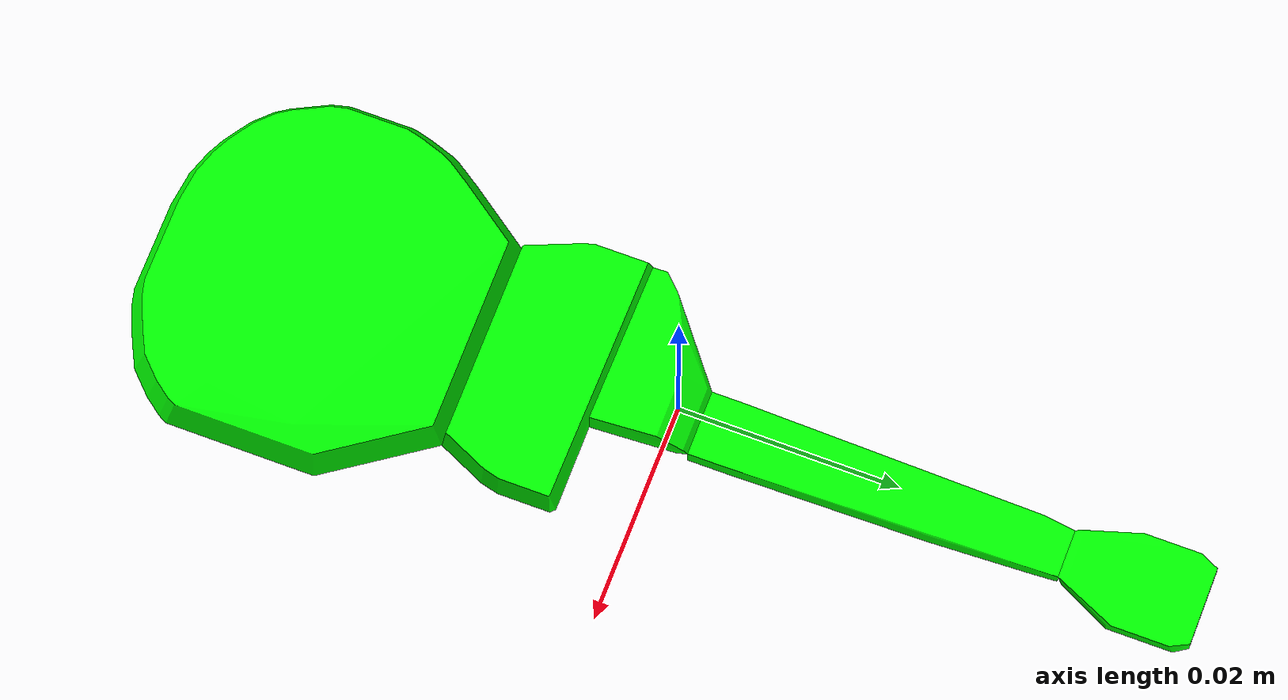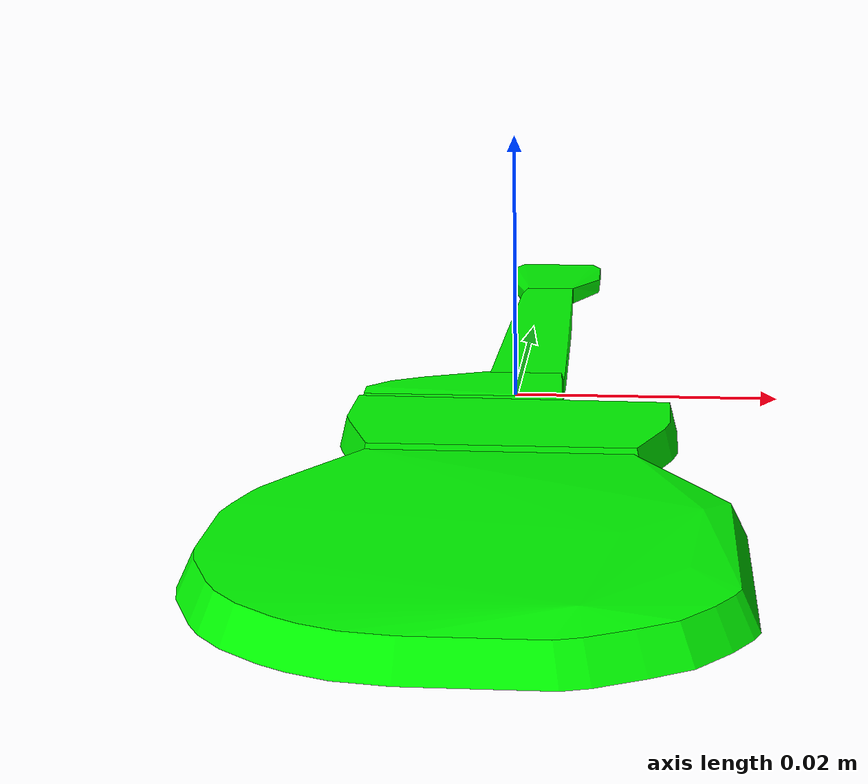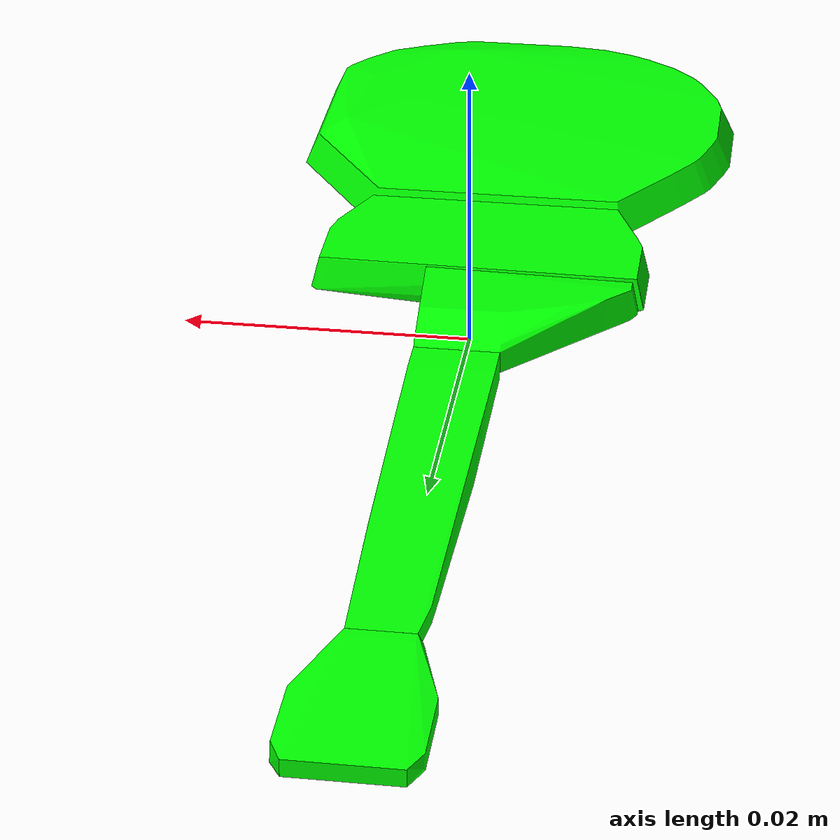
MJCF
<mujoco model="shapenet19-0">
  <asset>
    <mesh file="meshes/shapenet19-0/shapenet19-0_0.stl" name="shapenet19-0_0" scale="0.1 0.1 0.1"/>
    <mesh file="meshes/shapenet19-0/shapenet19-0_1.stl" name="shapenet19-0_1" scale="0.1 0.1 0.1"/>
    <mesh file="meshes/shapenet19-0/shapenet19-0_2.stl" name="shapenet19-0_2" scale="0.1 0.1 0.1"/>
    <mesh file="meshes/shapenet19-0/shapenet19-0_3.stl" name="shapenet19-0_3" scale="0.1 0.1 0.1"/>
    <mesh file="meshes/shapenet19-0/shapenet19-0_4.stl" name="shapenet19-0_4" scale="0.1 0.1 0.1"/>
  </asset>
  <worldbody>
    <body>
      <body name="collision">
        <geom pos="0 0 0" mesh="shapenet19-0_0" type="mesh" solimp="0.998 0.998 0.001" solref="0.001 1" density="100" friction="0.95 0.3 0.1" rgba="0 1 0 1" group="1" condim="4"/>
        <geom pos="0 0 0" mesh="shapenet19-0_1" type="mesh" solimp="0.998 0.998 0.001" solref="0.001 1" density="100" friction="0.95 0.3 0.1" rgba="0 1 0 1" group="1" condim="4"/>
        <geom pos="0 0 0" mesh="shapenet19-0_2" type="mesh" solimp="0.998 0.998 0.001" solref="0.001 1" density="100" friction="0.95 0.3 0.1" rgba="0 1 0 1" group="1" condim="4"/>
        <geom pos="0 0 0" mesh="shapenet19-0_3" type="mesh" solimp="0.998 0.998 0.001" solref="0.001 1" density="100" friction="0.95 0.3 0.1" rgba="0 1 0 1" group="1" condim="4"/>
        <geom pos="0 0 0" mesh="shapenet19-0_4" type="mesh" solimp="0.998 0.998 0.001" solref="0.001 1" density="100" friction="0.95 0.3 0.1" rgba="0 1 0 1" group="1" condim="4"/>
      </body>
      <body name="visual">
        <geom pos="0 0 0" mesh="shapenet19-0_0" type="mesh" rgba="0 1 0 1" conaffinity="0" contype="0" group="0" mass="0.0001"/>
        <geom pos="0 0 0" mesh="shapenet19-0_1" type="mesh" rgba="0 1 0 1" conaffinity="0" contype="0" group="0" mass="0.0001"/>
        <geom pos="0 0 0" mesh="shapenet19-0_2" type="mesh" rgba="0 1 0 1" conaffinity="0" contype="0" group="0" mass="0.0001"/>
        <geom pos="0 0 0" mesh="shapenet19-0_3" type="mesh" rgba="0 1 0 1" conaffinity="0" contype="0" group="0" mass="0.0001"/>
        <geom pos="0 0 0" mesh="shapenet19-0_4" type="mesh" rgba="0 1 0 1" conaffinity="0" contype="0" group="0" mass="0.0001"/>
      </body>
      <site rgba="0 0 0 0" size="0.005" pos="0 0 -0.06" name="bottom_site"/>
      <site rgba="0 0 0 0" size="0.005" pos="0 0 0.04" name="top_site"/>
      <site rgba="0 0 0 0" size="0.005" pos="0.025 0.025 0" name="horizontal_radius_site"/>
    </body>
  </worldbody>
</mujoco>
